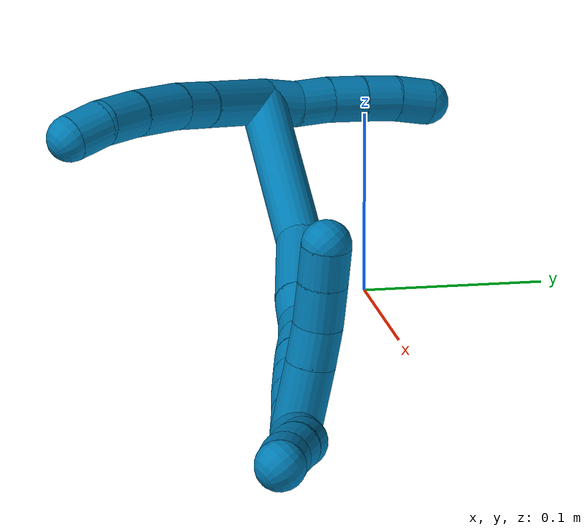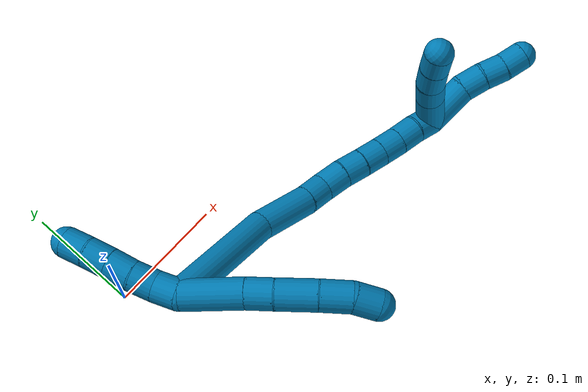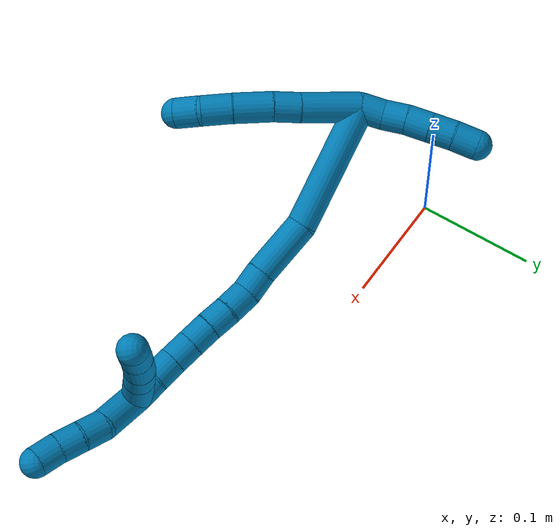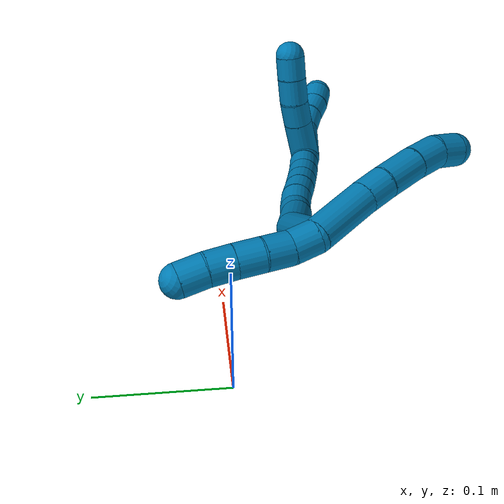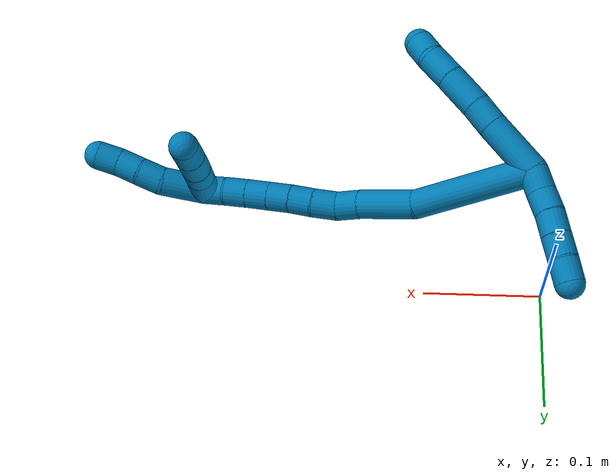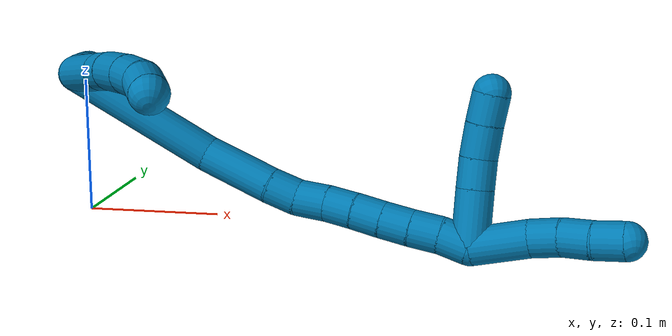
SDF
<sdf version="1.7">
 <world name="default">
  <model name="9">
   <static>0</static>
   <link name="9">
    <collision name="collision-cylinder-e_1_2_8">
     <pose>0.009242 -0.015948 -0.016878 2.3845 0.378766 0.898192</pose>
     <geometry><cylinder><radius>0.0125</radius><length>0.049985</length></cylinder></geometry>
     <surface>
      <friction><ode><mu>1.16</mu><mu2>1.16</mu2><slip1>0</slip1><slip2>0</slip2></ode></friction>
      <contact><ode><kp>1e+06</kp><kd>1</kd><max_vel>0</max_vel><min_depth>0.001</min_depth></ode></contact>
     </surface>
    </collision>
    <visual name="visual-cylinder-e_1_2_8">
     <pose>0.009242 -0.015948 -0.016878 2.3845 0.378766 0.898192</pose>
     <geometry><cylinder><radius>0.0125</radius><length>0.049985</length></cylinder></geometry>
     <material><ambient>0 0.490196 0.709804 1</ambient></material>
    </visual>
    <collision name="collision-cylinder-e_2_8_9">
     <pose>0.021922 -0.038896 -0.041376 2.39864 0.32088 0.787454</pose>
     <geometry><cylinder><radius>0.0125</radius><length>0.021807</length></cylinder></geometry>
     <surface>
      <friction><ode><mu>1.16</mu><mu2>1.16</mu2><slip1>0</slip1><slip2>0</slip2></ode></friction>
      <contact><ode><kp>1e+06</kp><kd>1</kd><max_vel>0</max_vel><min_depth>0.001</min_depth></ode></contact>
     </surface>
    </collision>
    <visual name="visual-cylinder-e_2_8_9">
     <pose>0.021922 -0.038896 -0.041376 2.39864 0.32088 0.787454</pose>
     <geometry><cylinder><radius>0.0125</radius><length>0.021807</length></cylinder></geometry>
     <material><ambient>0 0.490196 0.709804 1</ambient></material>
    </visual>
    <collision name="collision-cylinder-e_3_9_10">
     <pose>0.031049 -0.055239 -0.06107 2.48298 0.356637 0.970626</pose>
     <geometry><cylinder><radius>0.0125</radius><length>0.032584</length></cylinder></geometry>
     <surface>
      <friction><ode><mu>1.16</mu><mu2>1.16</mu2><slip1>0</slip1><slip2>0</slip2></ode></friction>
      <contact><ode><kp>1e+06</kp><kd>1</kd><max_vel>0</max_vel><min_depth>0.001</min_depth></ode></contact>
     </surface>
    </collision>
    <visual name="visual-cylinder-e_3_9_10">
     <pose>0.031049 -0.055239 -0.06107 2.48298 0.356637 0.970626</pose>
     <geometry><cylinder><radius>0.0125</radius><length>0.032584</length></cylinder></geometry>
     <material><ambient>0 0.490196 0.709804 1</ambient></material>
    </visual>
    <collision name="collision-cylinder-e_4_10_11">
     <pose>0.04105 -0.071093 -0.083106 2.56277 0.347728 1.06583</pose>
     <geometry><cylinder><radius>0.0125</radius><length>0.025315</length></cylinder></geometry>
     <surface>
      <friction><ode><mu>1.16</mu><mu2>1.16</mu2><slip1>0</slip1><slip2>0</slip2></ode></friction>
      <contact><ode><kp>1e+06</kp><kd>1</kd><max_vel>0</max_vel><min_depth>0.001</min_depth></ode></contact>
     </surface>
    </collision>
    <visual name="visual-cylinder-e_4_10_11">
     <pose>0.04105 -0.071093 -0.083106 2.56277 0.347728 1.06583</pose>
     <geometry><cylinder><radius>0.0125</radius><length>0.025315</length></cylinder></geometry>
     <material><ambient>0 0.490196 0.709804 1</ambient></material>
    </visual>
    <collision name="collision-cylinder-e_5_11_6">
     <pose>0.047109 -0.081024 -0.102467 2.79254 0.172723 0.912872</pose>
     <geometry><cylinder><radius>0.0125</radius><length>0.020309</length></cylinder></geometry>
     <surface>
      <friction><ode><mu>1.16</mu><mu2>1.16</mu2><slip1>0</slip1><slip2>0</slip2></ode></friction>
      <contact><ode><kp>1e+06</kp><kd>1</kd><max_vel>0</max_vel><min_depth>0.001</min_depth></ode></contact>
     </surface>
    </collision>
    <visual name="visual-cylinder-e_5_11_6">
     <pose>0.047109 -0.081024 -0.102467 2.79254 0.172723 0.912872</pose>
     <geometry><cylinder><radius>0.0125</radius><length>0.020309</length></cylinder></geometry>
     <material><ambient>0 0.490196 0.709804 1</ambient></material>
    </visual>
    <collision name="collision-cylinder-e_1_2_12">
     <pose>-5.6e-05 0.007003 0.007138 -0.775818 -0.005641 0.002305</pose>
     <geometry><cylinder><radius>0.0125</radius><length>0.02</length></cylinder></geometry>
     <surface>
      <friction><ode><mu>1.16</mu><mu2>1.16</mu2><slip1>0</slip1><slip2>0</slip2></ode></friction>
      <contact><ode><kp>1e+06</kp><kd>1</kd><max_vel>0</max_vel><min_depth>0.001</min_depth></ode></contact>
     </surface>
    </collision>
    <visual name="visual-cylinder-e_1_2_12">
     <pose>-5.6e-05 0.007003 0.007138 -0.775818 -0.005641 0.002305</pose>
     <geometry><cylinder><radius>0.0125</radius><length>0.02</length></cylinder></geometry>
     <material><ambient>0 0.490196 0.709804 1</ambient></material>
    </visual>
    <collision name="collision-cylinder-e_2_12_13">
     <pose>0.000122 0.019445 0.022665 -0.57523 0.023488 -0.006949</pose>
     <geometry><cylinder><radius>0.0125</radius><length>0.02</length></cylinder></geometry>
     <surface>
      <friction><ode><mu>1.16</mu><mu2>1.16</mu2><slip1>0</slip1><slip2>0</slip2></ode></friction>
      <contact><ode><kp>1e+06</kp><kd>1</kd><max_vel>0</max_vel><min_depth>0.001</min_depth></ode></contact>
     </surface>
    </collision>
    <visual name="visual-cylinder-e_2_12_13">
     <pose>0.000122 0.019445 0.022665 -0.57523 0.023488 -0.006949</pose>
     <geometry><cylinder><radius>0.0125</radius><length>0.02</length></cylinder></geometry>
     <material><ambient>0 0.490196 0.709804 1</ambient></material>
    </visual>
    <collision name="collision-cylinder-e_3_13_14">
     <pose>0.001516 0.030853 0.038992 -0.644752 0.116135 -0.038831</pose>
     <geometry><cylinder><radius>0.0125</radius><length>0.02</length></cylinder></geometry>
     <surface>
      <friction><ode><mu>1.16</mu><mu2>1.16</mu2><slip1>0</slip1><slip2>0</slip2></ode></friction>
      <contact><ode><kp>1e+06</kp><kd>1</kd><max_vel>0</max_vel><min_depth>0.001</min_depth></ode></contact>
     </surface>
    </collision>
    <visual name="visual-cylinder-e_3_13_14">
     <pose>0.001516 0.030853 0.038992 -0.644752 0.116135 -0.038831</pose>
     <geometry><cylinder><radius>0.0125</radius><length>0.02</length></cylinder></geometry>
     <material><ambient>0 0.490196 0.709804 1</ambient></material>
    </visual>
    <collision name="collision-cylinder-e_4_14_15">
     <pose>0.003625 0.043025 0.054717 -0.672708 0.095165 -0.033295</pose>
     <geometry><cylinder><radius>0.0125</radius><length>0.02</length></cylinder></geometry>
     <surface>
      <friction><ode><mu>1.16</mu><mu2>1.16</mu2><slip1>0</slip1><slip2>0</slip2></ode></friction>
      <contact><ode><kp>1e+06</kp><kd>1</kd><max_vel>0</max_vel><min_depth>0.001</min_depth></ode></contact>
     </surface>
    </collision>
    <visual name="visual-cylinder-e_4_14_15">
     <pose>0.003625 0.043025 0.054717 -0.672708 0.095165 -0.033295</pose>
     <geometry><cylinder><radius>0.0125</radius><length>0.02</length></cylinder></geometry>
     <material><ambient>0 0.490196 0.709804 1</ambient></material>
    </visual>
    <collision name="collision-cylinder-e_5_15_5">
     <pose>0.005466 0.056251 0.069566 -0.782521 0.089201 -0.036818</pose>
     <geometry><cylinder><radius>0.0125</radius><length>0.02</length></cylinder></geometry>
     <surface>
      <friction><ode><mu>1.16</mu><mu2>1.16</mu2><slip1>0</slip1><slip2>0</slip2></ode></friction>
      <contact><ode><kp>1e+06</kp><kd>1</kd><max_vel>0</max_vel><min_depth>0.001</min_depth></ode></contact>
     </surface>
    </collision>
    <visual name="visual-cylinder-e_5_15_5">
     <pose>0.005466 0.056251 0.069566 -0.782521 0.089201 -0.036818</pose>
     <geometry><cylinder><radius>0.0125</radius><length>0.02</length></cylinder></geometry>
     <material><ambient>0 0.490196 0.709804 1</ambient></material>
    </visual>
    <collision name="collision-cylinder-e_1_2_16">
     <pose>0.044813 0.014613 -0.025274 -2.61738 0.993388 -2.22237</pose>
     <geometry><cylinder><radius>0.0125</radius><length>0.106967</length></cylinder></geometry>
     <surface>
      <friction><ode><mu>1.16</mu><mu2>1.16</mu2><slip1>0</slip1><slip2>0</slip2></ode></friction>
      <contact><ode><kp>1e+06</kp><kd>1</kd><max_vel>0</max_vel><min_depth>0.001</min_depth></ode></contact>
     </surface>
    </collision>
    <visual name="visual-cylinder-e_1_2_16">
     <pose>0.044813 0.014613 -0.025274 -2.61738 0.993388 -2.22237</pose>
     <geometry><cylinder><radius>0.0125</radius><length>0.106967</length></cylinder></geometry>
     <material><ambient>0 0.490196 0.709804 1</ambient></material>
    </visual>
    <collision name="collision-cylinder-e_2_16_17">
     <pose>0.110113 0.030081 -0.065069 -3.08275 0.953385 -3.02773</pose>
     <geometry><cylinder><radius>0.0125</radius><length>0.050253</length></cylinder></geometry>
     <surface>
      <friction><ode><mu>1.16</mu><mu2>1.16</mu2><slip1>0</slip1><slip2>0</slip2></ode></friction>
      <contact><ode><kp>1e+06</kp><kd>1</kd><max_vel>0</max_vel><min_depth>0.001</min_depth></ode></contact>
     </surface>
    </collision>
    <visual name="visual-cylinder-e_2_16_17">
     <pose>0.110113 0.030081 -0.065069 -3.08275 0.953385 -3.02773</pose>
     <geometry><cylinder><radius>0.0125</radius><length>0.050253</length></cylinder></geometry>
     <material><ambient>0 0.490196 0.709804 1</ambient></material>
    </visual>
    <collision name="collision-cylinder-e_3_17_18">
     <pose>0.139669 0.031651 -0.084724 -3.00321 1.05153 -2.90385</pose>
     <geometry><cylinder><radius>0.0125</radius><length>0.02089</length></cylinder></geometry>
     <surface>
      <friction><ode><mu>1.16</mu><mu2>1.16</mu2><slip1>0</slip1><slip2>0</slip2></ode></friction>
      <contact><ode><kp>1e+06</kp><kd>1</kd><max_vel>0</max_vel><min_depth>0.001</min_depth></ode></contact>
     </surface>
    </collision>
    <visual name="visual-cylinder-e_3_17_18">
     <pose>0.139669 0.031651 -0.084724 -3.00321 1.05153 -2.90385</pose>
     <geometry><cylinder><radius>0.0125</radius><length>0.02089</length></cylinder></geometry>
     <material><ambient>0 0.490196 0.709804 1</ambient></material>
    </visual>
    <collision name="collision-cylinder-e_4_18_19">
     <pose>0.158248 0.030136 -0.094725 2.71201 1.05808 2.42729</pose>
     <geometry><cylinder><radius>0.0125</radius><length>0.021828</length></cylinder></geometry>
     <surface>
      <friction><ode><mu>1.16</mu><mu2>1.16</mu2><slip1>0</slip1><slip2>0</slip2></ode></friction>
      <contact><ode><kp>1e+06</kp><kd>1</kd><max_vel>0</max_vel><min_depth>0.001</min_depth></ode></contact>
     </surface>
    </collision>
    <visual name="visual-cylinder-e_4_18_19">
     <pose>0.158248 0.030136 -0.094725 2.71201 1.05808 2.42729</pose>
     <geometry><cylinder><radius>0.0125</radius><length>0.021828</length></cylinder></geometry>
     <material><ambient>0 0.490196 0.709804 1</ambient></material>
    </visual>
    <collision name="collision-cylinder-e_5_19_20">
     <pose>0.176019 0.025964 -0.104917 2.79169 0.969399 2.49391</pose>
     <geometry><cylinder><radius>0.0125</radius><length>0.020035</length></cylinder></geometry>
     <surface>
      <friction><ode><mu>1.16</mu><mu2>1.16</mu2><slip1>0</slip1><slip2>0</slip2></ode></friction>
      <contact><ode><kp>1e+06</kp><kd>1</kd><max_vel>0</max_vel><min_depth>0.001</min_depth></ode></contact>
     </surface>
    </collision>
    <visual name="visual-cylinder-e_5_19_20">
     <pose>0.176019 0.025964 -0.104917 2.79169 0.969399 2.49391</pose>
     <geometry><cylinder><radius>0.0125</radius><length>0.020035</length></cylinder></geometry>
     <material><ambient>0 0.490196 0.709804 1</ambient></material>
    </visual>
    <collision name="collision-cylinder-e_6_20_21">
     <pose>0.192683 0.022636 -0.115498 2.88405 0.996704 2.67437</pose>
     <geometry><cylinder><radius>0.0125</radius><length>0.020017</length></cylinder></geometry>
     <surface>
      <friction><ode><mu>1.16</mu><mu2>1.16</mu2><slip1>0</slip1><slip2>0</slip2></ode></friction>
      <contact><ode><kp>1e+06</kp><kd>1</kd><max_vel>0</max_vel><min_depth>0.001</min_depth></ode></contact>
     </surface>
    </collision>
    <visual name="visual-cylinder-e_6_20_21">
     <pose>0.192683 0.022636 -0.115498 2.88405 0.996704 2.67437</pose>
     <geometry><cylinder><radius>0.0125</radius><length>0.020017</length></cylinder></geometry>
     <material><ambient>0 0.490196 0.709804 1</ambient></material>
    </visual>
    <collision name="collision-cylinder-e_7_21_22">
     <pose>0.209577 0.019722 -0.125811 2.84783 1.01416 2.62104</pose>
     <geometry><cylinder><radius>0.0125</radius><length>0.020001</length></cylinder></geometry>
     <surface>
      <friction><ode><mu>1.16</mu><mu2>1.16</mu2><slip1>0</slip1><slip2>0</slip2></ode></friction>
      <contact><ode><kp>1e+06</kp><kd>1</kd><max_vel>0</max_vel><min_depth>0.001</min_depth></ode></contact>
     </surface>
    </collision>
    <visual name="visual-cylinder-e_7_21_22">
     <pose>0.209577 0.019722 -0.125811 2.84783 1.01416 2.62104</pose>
     <geometry><cylinder><radius>0.0125</radius><length>0.020001</length></cylinder></geometry>
     <material><ambient>0 0.490196 0.709804 1</ambient></material>
    </visual>
    <collision name="collision-cylinder-e_8_22_23">
     <pose>0.226793 0.016615 -0.1355 2.81334 1.05971 2.59047</pose>
     <geometry><cylinder><radius>0.0125</radius><length>0.020007</length></cylinder></geometry>
     <surface>
      <friction><ode><mu>1.16</mu><mu2>1.16</mu2><slip1>0</slip1><slip2>0</slip2></ode></friction>
      <contact><ode><kp>1e+06</kp><kd>1</kd><max_vel>0</max_vel><min_depth>0.001</min_depth></ode></contact>
     </surface>
    </collision>
    <visual name="visual-cylinder-e_8_22_23">
     <pose>0.226793 0.016615 -0.1355 2.81334 1.05971 2.59047</pose>
     <geometry><cylinder><radius>0.0125</radius><length>0.020007</length></cylinder></geometry>
     <material><ambient>0 0.490196 0.709804 1</ambient></material>
    </visual>
    <collision name="collision-cylinder-e_9_23_1">
     <pose>0.24381 0.014381 -0.145684 3.02386 0.977473 2.92085</pose>
     <geometry><cylinder><radius>0.0125</radius><length>0.020002</length></cylinder></geometry>
     <surface>
      <friction><ode><mu>1.16</mu><mu2>1.16</mu2><slip1>0</slip1><slip2>0</slip2></ode></friction>
      <contact><ode><kp>1e+06</kp><kd>1</kd><max_vel>0</max_vel><min_depth>0.001</min_depth></ode></contact>
     </surface>
    </collision>
    <visual name="visual-cylinder-e_9_23_1">
     <pose>0.24381 0.014381 -0.145684 3.02386 0.977473 2.92085</pose>
     <geometry><cylinder><radius>0.0125</radius><length>0.020002</length></cylinder></geometry>
     <material><ambient>0 0.490196 0.709804 1</ambient></material>
    </visual>
    <collision name="collision-cylinder-e_1_1_24">
     <pose>0.26949 0.00564 -0.155012 2.00769 1.09675 1.52944</pose>
     <geometry><cylinder><radius>0.0125</radius><length>0.039086</length></cylinder></geometry>
     <surface>
      <friction><ode><mu>1.16</mu><mu2>1.16</mu2><slip1>0</slip1><slip2>0</slip2></ode></friction>
      <contact><ode><kp>1e+06</kp><kd>1</kd><max_vel>0</max_vel><min_depth>0.001</min_depth></ode></contact>
     </surface>
    </collision>
    <visual name="visual-cylinder-e_1_1_24">
     <pose>0.26949 0.00564 -0.155012 2.00769 1.09675 1.52944</pose>
     <geometry><cylinder><radius>0.0125</radius><length>0.039086</length></cylinder></geometry>
     <material><ambient>0 0.490196 0.709804 1</ambient></material>
    </visual>
    <collision name="collision-cylinder-e_2_24_25">
     <pose>0.294816 -0.007741 -0.162961 2.23798 0.866475 1.52283</pose>
     <geometry><cylinder><radius>0.0125</radius><length>0.020832</length></cylinder></geometry>
     <surface>
      <friction><ode><mu>1.16</mu><mu2>1.16</mu2><slip1>0</slip1><slip2>0</slip2></ode></friction>
      <contact><ode><kp>1e+06</kp><kd>1</kd><max_vel>0</max_vel><min_depth>0.001</min_depth></ode></contact>
     </surface>
    </collision>
    <visual name="visual-cylinder-e_2_24_25">
     <pose>0.294816 -0.007741 -0.162961 2.23798 0.866475 1.52283</pose>
     <geometry><cylinder><radius>0.0125</radius><length>0.020832</length></cylinder></geometry>
     <material><ambient>0 0.490196 0.709804 1</ambient></material>
    </visual>
    <collision name="collision-cylinder-e_3_25_26">
     <pose>0.310095 -0.0175 -0.172316 2.43089 0.82099 1.72949</pose>
     <geometry><cylinder><radius>0.0125</radius><length>0.020063</length></cylinder></geometry>
     <surface>
      <friction><ode><mu>1.16</mu><mu2>1.16</mu2><slip1>0</slip1><slip2>0</slip2></ode></friction>
      <contact><ode><kp>1e+06</kp><kd>1</kd><max_vel>0</max_vel><min_depth>0.001</min_depth></ode></contact>
     </surface>
    </collision>
    <visual name="visual-cylinder-e_3_25_26">
     <pose>0.310095 -0.0175 -0.172316 2.43089 0.82099 1.72949</pose>
     <geometry><cylinder><radius>0.0125</radius><length>0.020063</length></cylinder></geometry>
     <material><ambient>0 0.490196 0.709804 1</ambient></material>
    </visual>
    <collision name="collision-cylinder-e_4_26_4">
     <pose>0.325542 -0.026178 -0.18158 2.33987 0.943997 1.75581</pose>
     <geometry><cylinder><radius>0.0125</radius><length>0.020018</length></cylinder></geometry>
     <surface>
      <friction><ode><mu>1.16</mu><mu2>1.16</mu2><slip1>0</slip1><slip2>0</slip2></ode></friction>
      <contact><ode><kp>1e+06</kp><kd>1</kd><max_vel>0</max_vel><min_depth>0.001</min_depth></ode></contact>
     </surface>
    </collision>
    <visual name="visual-cylinder-e_4_26_4">
     <pose>0.325542 -0.026178 -0.18158 2.33987 0.943997 1.75581</pose>
     <geometry><cylinder><radius>0.0125</radius><length>0.020018</length></cylinder></geometry>
     <material><ambient>0 0.490196 0.709804 1</ambient></material>
    </visual>
    <collision name="collision-cylinder-e_1_1_27">
     <pose>0.253787 0.000228 -0.138449 0.812305 0.090415 0.038906</pose>
     <geometry><cylinder><radius>0.0125</radius><length>0.037338</length></cylinder></geometry>
     <surface>
      <friction><ode><mu>1.16</mu><mu2>1.16</mu2><slip1>0</slip1><slip2>0</slip2></ode></friction>
      <contact><ode><kp>1e+06</kp><kd>1</kd><max_vel>0</max_vel><min_depth>0.001</min_depth></ode></contact>
     </surface>
    </collision>
    <visual name="visual-cylinder-e_1_1_27">
     <pose>0.253787 0.000228 -0.138449 0.812305 0.090415 0.038906</pose>
     <geometry><cylinder><radius>0.0125</radius><length>0.037338</length></cylinder></geometry>
     <material><ambient>0 0.490196 0.709804 1</ambient></material>
    </visual>
    <collision name="collision-cylinder-e_2_27_28">
     <pose>0.256465 -0.020837 -0.118914 0.842804 0.097583 0.04377</pose>
     <geometry><cylinder><radius>0.0125</radius><length>0.020375</length></cylinder></geometry>
     <surface>
      <friction><ode><mu>1.16</mu><mu2>1.16</mu2><slip1>0</slip1><slip2>0</slip2></ode></friction>
      <contact><ode><kp>1e+06</kp><kd>1</kd><max_vel>0</max_vel><min_depth>0.001</min_depth></ode></contact>
     </surface>
    </collision>
    <visual name="visual-cylinder-e_2_27_28">
     <pose>0.256465 -0.020837 -0.118914 0.842804 0.097583 0.04377</pose>
     <geometry><cylinder><radius>0.0125</radius><length>0.020375</length></cylinder></geometry>
     <material><ambient>0 0.490196 0.709804 1</ambient></material>
    </visual>
    <collision name="collision-cylinder-e_3_28_29">
     <pose>0.258983 -0.037398 -0.105822 0.956195 0.137717 0.071447</pose>
     <geometry><cylinder><radius>0.0125</radius><length>0.022221</length></cylinder></geometry>
     <surface>
      <friction><ode><mu>1.16</mu><mu2>1.16</mu2><slip1>0</slip1><slip2>0</slip2></ode></friction>
      <contact><ode><kp>1e+06</kp><kd>1</kd><max_vel>0</max_vel><min_depth>0.001</min_depth></ode></contact>
     </surface>
    </collision>
    <visual name="visual-cylinder-e_3_28_29">
     <pose>0.258983 -0.037398 -0.105822 0.956195 0.137717 0.071447</pose>
     <geometry><cylinder><radius>0.0125</radius><length>0.022221</length></cylinder></geometry>
     <material><ambient>0 0.490196 0.709804 1</ambient></material>
    </visual>
    <collision name="collision-cylinder-e_4_29_3">
     <pose>0.262261 -0.054654 -0.094064 0.991054 0.175561 0.095065</pose>
     <geometry><cylinder><radius>0.0125</radius><length>0.020066</length></cylinder></geometry>
     <surface>
      <friction><ode><mu>1.16</mu><mu2>1.16</mu2><slip1>0</slip1><slip2>0</slip2></ode></friction>
      <contact><ode><kp>1e+06</kp><kd>1</kd><max_vel>0</max_vel><min_depth>0.001</min_depth></ode></contact>
     </surface>
    </collision>
    <visual name="visual-cylinder-e_4_29_3">
     <pose>0.262261 -0.054654 -0.094064 0.991054 0.175561 0.095065</pose>
     <geometry><cylinder><radius>0.0125</radius><length>0.020066</length></cylinder></geometry>
     <material><ambient>0 0.490196 0.709804 1</ambient></material>
    </visual>
    <collision name="collision-sphere-3">
     <pose>0.264013 -0.062918 -0.088652 0 -0 0</pose>
     <geometry><sphere><radius>0.0125</radius></sphere></geometry>
     <surface>
      <friction><ode><mu>1.16</mu><mu2>1.16</mu2><slip1>0</slip1><slip2>0</slip2></ode></friction>
      <contact><ode><kp>1e+06</kp><kd>1</kd><max_vel>0</max_vel><min_depth>0.001</min_depth></ode></contact>
     </surface>
    </collision>
    <visual name="visual-sphere-3">
     <pose>0.264013 -0.062918 -0.088652 0 -0 0</pose>
     <geometry><sphere><radius>0.0125</radius></sphere></geometry>
     <material><ambient>0 0.490196 0.709804 1</ambient></material>
    </visual>
    <collision name="collision-sphere-29">
     <pose>0.260509 -0.046389 -0.099475 0 -0 0</pose>
     <geometry><sphere><radius>0.0125</radius></sphere></geometry>
     <surface>
      <friction><ode><mu>1.16</mu><mu2>1.16</mu2><slip1>0</slip1><slip2>0</slip2></ode></friction>
      <contact><ode><kp>1e+06</kp><kd>1</kd><max_vel>0</max_vel><min_depth>0.001</min_depth></ode></contact>
     </surface>
    </collision>
    <visual name="visual-sphere-29">
     <pose>0.260509 -0.046389 -0.099475 0 -0 0</pose>
     <geometry><sphere><radius>0.0125</radius></sphere></geometry>
     <material><ambient>0 0.490196 0.709804 1</ambient></material>
    </visual>
    <collision name="collision-sphere-28">
     <pose>0.257458 -0.028406 -0.112168 0 -0 0</pose>
     <geometry><sphere><radius>0.0125</radius></sphere></geometry>
     <surface>
      <friction><ode><mu>1.16</mu><mu2>1.16</mu2><slip1>0</slip1><slip2>0</slip2></ode></friction>
      <contact><ode><kp>1e+06</kp><kd>1</kd><max_vel>0</max_vel><min_depth>0.001</min_depth></ode></contact>
     </surface>
    </collision>
    <visual name="visual-sphere-28">
     <pose>0.257458 -0.028406 -0.112168 0 -0 0</pose>
     <geometry><sphere><radius>0.0125</radius></sphere></geometry>
     <material><ambient>0 0.490196 0.709804 1</ambient></material>
    </visual>
    <collision name="collision-sphere-27">
     <pose>0.255473 -0.013269 -0.12566 0 -0 0</pose>
     <geometry><sphere><radius>0.0125</radius></sphere></geometry>
     <surface>
      <friction><ode><mu>1.16</mu><mu2>1.16</mu2><slip1>0</slip1><slip2>0</slip2></ode></friction>
      <contact><ode><kp>1e+06</kp><kd>1</kd><max_vel>0</max_vel><min_depth>0.001</min_depth></ode></contact>
     </surface>
    </collision>
    <visual name="visual-sphere-27">
     <pose>0.255473 -0.013269 -0.12566 0 -0 0</pose>
     <geometry><sphere><radius>0.0125</radius></sphere></geometry>
     <material><ambient>0 0.490196 0.709804 1</ambient></material>
    </visual>
    <collision name="collision-sphere-4">
     <pose>0.333649 -0.030397 -0.185663 0 -0 0</pose>
     <geometry><sphere><radius>0.0125</radius></sphere></geometry>
     <surface>
      <friction><ode><mu>1.16</mu><mu2>1.16</mu2><slip1>0</slip1><slip2>0</slip2></ode></friction>
      <contact><ode><kp>1e+06</kp><kd>1</kd><max_vel>0</max_vel><min_depth>0.001</min_depth></ode></contact>
     </surface>
    </collision>
    <visual name="visual-sphere-4">
     <pose>0.333649 -0.030397 -0.185663 0 -0 0</pose>
     <geometry><sphere><radius>0.0125</radius></sphere></geometry>
     <material><ambient>0 0.490196 0.709804 1</ambient></material>
    </visual>
    <collision name="collision-sphere-26">
     <pose>0.317436 -0.02196 -0.177497 0 -0 0</pose>
     <geometry><sphere><radius>0.0125</radius></sphere></geometry>
     <surface>
      <friction><ode><mu>1.16</mu><mu2>1.16</mu2><slip1>0</slip1><slip2>0</slip2></ode></friction>
      <contact><ode><kp>1e+06</kp><kd>1</kd><max_vel>0</max_vel><min_depth>0.001</min_depth></ode></contact>
     </surface>
    </collision>
    <visual name="visual-sphere-26">
     <pose>0.317436 -0.02196 -0.177497 0 -0 0</pose>
     <geometry><sphere><radius>0.0125</radius></sphere></geometry>
     <material><ambient>0 0.490196 0.709804 1</ambient></material>
    </visual>
    <collision name="collision-sphere-25">
     <pose>0.302753 -0.01304 -0.167134 0 -0 0</pose>
     <geometry><sphere><radius>0.0125</radius></sphere></geometry>
     <surface>
      <friction><ode><mu>1.16</mu><mu2>1.16</mu2><slip1>0</slip1><slip2>0</slip2></ode></friction>
      <contact><ode><kp>1e+06</kp><kd>1</kd><max_vel>0</max_vel><min_depth>0.001</min_depth></ode></contact>
     </surface>
    </collision>
    <visual name="visual-sphere-25">
     <pose>0.302753 -0.01304 -0.167134 0 -0 0</pose>
     <geometry><sphere><radius>0.0125</radius></sphere></geometry>
     <material><ambient>0 0.490196 0.709804 1</ambient></material>
    </visual>
    <collision name="collision-sphere-24">
     <pose>0.286878 -0.002443 -0.158787 0 -0 0</pose>
     <geometry><sphere><radius>0.0125</radius></sphere></geometry>
     <surface>
      <friction><ode><mu>1.16</mu><mu2>1.16</mu2><slip1>0</slip1><slip2>0</slip2></ode></friction>
      <contact><ode><kp>1e+06</kp><kd>1</kd><max_vel>0</max_vel><min_depth>0.001</min_depth></ode></contact>
     </surface>
    </collision>
    <visual name="visual-sphere-24">
     <pose>0.286878 -0.002443 -0.158787 0 -0 0</pose>
     <geometry><sphere><radius>0.0125</radius></sphere></geometry>
     <material><ambient>0 0.490196 0.709804 1</ambient></material>
    </visual>
    <collision name="collision-sphere-1">
     <pose>0.252102 0.013724 -0.151237 0 -0 0</pose>
     <geometry><sphere><radius>0.0125</radius></sphere></geometry>
     <surface>
      <friction><ode><mu>1.16</mu><mu2>1.16</mu2><slip1>0</slip1><slip2>0</slip2></ode></friction>
      <contact><ode><kp>1e+06</kp><kd>1</kd><max_vel>0</max_vel><min_depth>0.001</min_depth></ode></contact>
     </surface>
    </collision>
    <visual name="visual-sphere-1">
     <pose>0.252102 0.013724 -0.151237 0 -0 0</pose>
     <geometry><sphere><radius>0.0125</radius></sphere></geometry>
     <material><ambient>0 0.490196 0.709804 1</ambient></material>
    </visual>
    <collision name="collision-sphere-23">
     <pose>0.235518 0.015037 -0.140131 0 -0 0</pose>
     <geometry><sphere><radius>0.0125</radius></sphere></geometry>
     <surface>
      <friction><ode><mu>1.16</mu><mu2>1.16</mu2><slip1>0</slip1><slip2>0</slip2></ode></friction>
      <contact><ode><kp>1e+06</kp><kd>1</kd><max_vel>0</max_vel><min_depth>0.001</min_depth></ode></contact>
     </surface>
    </collision>
    <visual name="visual-sphere-23">
     <pose>0.235518 0.015037 -0.140131 0 -0 0</pose>
     <geometry><sphere><radius>0.0125</radius></sphere></geometry>
     <material><ambient>0 0.490196 0.709804 1</ambient></material>
    </visual>
    <collision name="collision-sphere-22">
     <pose>0.218068 0.018192 -0.130868 0 -0 0</pose>
     <geometry><sphere><radius>0.0125</radius></sphere></geometry>
     <surface>
      <friction><ode><mu>1.16</mu><mu2>1.16</mu2><slip1>0</slip1><slip2>0</slip2></ode></friction>
      <contact><ode><kp>1e+06</kp><kd>1</kd><max_vel>0</max_vel><min_depth>0.001</min_depth></ode></contact>
     </surface>
    </collision>
    <visual name="visual-sphere-22">
     <pose>0.218068 0.018192 -0.130868 0 -0 0</pose>
     <geometry><sphere><radius>0.0125</radius></sphere></geometry>
     <material><ambient>0 0.490196 0.709804 1</ambient></material>
    </visual>
    <collision name="collision-sphere-21">
     <pose>0.201087 0.021252 -0.120754 0 -0 0</pose>
     <geometry><sphere><radius>0.0125</radius></sphere></geometry>
     <surface>
      <friction><ode><mu>1.16</mu><mu2>1.16</mu2><slip1>0</slip1><slip2>0</slip2></ode></friction>
      <contact><ode><kp>1e+06</kp><kd>1</kd><max_vel>0</max_vel><min_depth>0.001</min_depth></ode></contact>
     </surface>
    </collision>
    <visual name="visual-sphere-21">
     <pose>0.201087 0.021252 -0.120754 0 -0 0</pose>
     <geometry><sphere><radius>0.0125</radius></sphere></geometry>
     <material><ambient>0 0.490196 0.709804 1</ambient></material>
    </visual>
    <collision name="collision-sphere-6">
     <pose>0.048854 -0.084445 -0.111867 0 -0 0</pose>
     <geometry><sphere><radius>0.0125</radius></sphere></geometry>
     <surface>
      <friction><ode><mu>1.16</mu><mu2>1.16</mu2><slip1>0</slip1><slip2>0</slip2></ode></friction>
      <contact><ode><kp>1e+06</kp><kd>1</kd><max_vel>0</max_vel><min_depth>0.001</min_depth></ode></contact>
     </surface>
    </collision>
    <visual name="visual-sphere-6">
     <pose>0.048854 -0.084445 -0.111867 0 -0 0</pose>
     <geometry><sphere><radius>0.0125</radius></sphere></geometry>
     <material><ambient>0 0.490196 0.709804 1</ambient></material>
    </visual>
    <collision name="collision-sphere-11">
     <pose>0.045363 -0.077602 -0.093067 0 -0 0</pose>
     <geometry><sphere><radius>0.0125</radius></sphere></geometry>
     <surface>
      <friction><ode><mu>1.16</mu><mu2>1.16</mu2><slip1>0</slip1><slip2>0</slip2></ode></friction>
      <contact><ode><kp>1e+06</kp><kd>1</kd><max_vel>0</max_vel><min_depth>0.001</min_depth></ode></contact>
     </surface>
    </collision>
    <visual name="visual-sphere-11">
     <pose>0.045363 -0.077602 -0.093067 0 -0 0</pose>
     <geometry><sphere><radius>0.0125</radius></sphere></geometry>
     <material><ambient>0 0.490196 0.709804 1</ambient></material>
    </visual>
    <collision name="collision-sphere-10">
     <pose>0.036737 -0.064583 -0.073144 0 -0 0</pose>
     <geometry><sphere><radius>0.0125</radius></sphere></geometry>
     <surface>
      <friction><ode><mu>1.16</mu><mu2>1.16</mu2><slip1>0</slip1><slip2>0</slip2></ode></friction>
      <contact><ode><kp>1e+06</kp><kd>1</kd><max_vel>0</max_vel><min_depth>0.001</min_depth></ode></contact>
     </surface>
    </collision>
    <visual name="visual-sphere-10">
     <pose>0.036737 -0.064583 -0.073144 0 -0 0</pose>
     <geometry><sphere><radius>0.0125</radius></sphere></geometry>
     <material><ambient>0 0.490196 0.709804 1</ambient></material>
    </visual>
    <collision name="collision-sphere-9">
     <pose>0.025361 -0.045896 -0.048997 0 -0 0</pose>
     <geometry><sphere><radius>0.0125</radius></sphere></geometry>
     <surface>
      <friction><ode><mu>1.16</mu><mu2>1.16</mu2><slip1>0</slip1><slip2>0</slip2></ode></friction>
      <contact><ode><kp>1e+06</kp><kd>1</kd><max_vel>0</max_vel><min_depth>0.001</min_depth></ode></contact>
     </surface>
    </collision>
    <visual name="visual-sphere-9">
     <pose>0.025361 -0.045896 -0.048997 0 -0 0</pose>
     <geometry><sphere><radius>0.0125</radius></sphere></geometry>
     <material><ambient>0 0.490196 0.709804 1</ambient></material>
    </visual>
    <collision name="collision-sphere-2">
     <geometry><sphere><radius>0.0125</radius></sphere></geometry>
     <surface>
      <friction><ode><mu>1.16</mu><mu2>1.16</mu2><slip1>0</slip1><slip2>0</slip2></ode></friction>
      <contact><ode><kp>1e+06</kp><kd>1</kd><max_vel>0</max_vel><min_depth>0.001</min_depth></ode></contact>
     </surface>
    </collision>
    <visual name="visual-sphere-2">
     <geometry><sphere><radius>0.0125</radius></sphere></geometry>
     <material><ambient>0 0.490196 0.709804 1</ambient></material>
    </visual>
    <collision name="collision-sphere-19">
     <pose>0.167759 0.027907 -0.099593 0 -0 0</pose>
     <geometry><sphere><radius>0.0125</radius></sphere></geometry>
     <surface>
      <friction><ode><mu>1.16</mu><mu2>1.16</mu2><slip1>0</slip1><slip2>0</slip2></ode></friction>
      <contact><ode><kp>1e+06</kp><kd>1</kd><max_vel>0</max_vel><min_depth>0.001</min_depth></ode></contact>
     </surface>
    </collision>
    <visual name="visual-sphere-19">
     <pose>0.167759 0.027907 -0.099593 0 -0 0</pose>
     <geometry><sphere><radius>0.0125</radius></sphere></geometry>
     <material><ambient>0 0.490196 0.709804 1</ambient></material>
    </visual>
    <collision name="collision-sphere-8">
     <pose>0.018483 -0.031897 -0.033756 0 -0 0</pose>
     <geometry><sphere><radius>0.0125</radius></sphere></geometry>
     <surface>
      <friction><ode><mu>1.16</mu><mu2>1.16</mu2><slip1>0</slip1><slip2>0</slip2></ode></friction>
      <contact><ode><kp>1e+06</kp><kd>1</kd><max_vel>0</max_vel><min_depth>0.001</min_depth></ode></contact>
     </surface>
    </collision>
    <visual name="visual-sphere-8">
     <pose>0.018483 -0.031897 -0.033756 0 -0 0</pose>
     <geometry><sphere><radius>0.0125</radius></sphere></geometry>
     <material><ambient>0 0.490196 0.709804 1</ambient></material>
    </visual>
    <collision name="collision-sphere-12">
     <pose>-0.000113 0.014006 0.014277 0 -0 0</pose>
     <geometry><sphere><radius>0.0125</radius></sphere></geometry>
     <surface>
      <friction><ode><mu>1.16</mu><mu2>1.16</mu2><slip1>0</slip1><slip2>0</slip2></ode></friction>
      <contact><ode><kp>1e+06</kp><kd>1</kd><max_vel>0</max_vel><min_depth>0.001</min_depth></ode></contact>
     </surface>
    </collision>
    <visual name="visual-sphere-12">
     <pose>-0.000113 0.014006 0.014277 0 -0 0</pose>
     <geometry><sphere><radius>0.0125</radius></sphere></geometry>
     <material><ambient>0 0.490196 0.709804 1</ambient></material>
    </visual>
    <collision name="collision-sphere-13">
     <pose>0.000357 0.024883 0.031053 0 -0 0</pose>
     <geometry><sphere><radius>0.0125</radius></sphere></geometry>
     <surface>
      <friction><ode><mu>1.16</mu><mu2>1.16</mu2><slip1>0</slip1><slip2>0</slip2></ode></friction>
      <contact><ode><kp>1e+06</kp><kd>1</kd><max_vel>0</max_vel><min_depth>0.001</min_depth></ode></contact>
     </surface>
    </collision>
    <visual name="visual-sphere-13">
     <pose>0.000357 0.024883 0.031053 0 -0 0</pose>
     <geometry><sphere><radius>0.0125</radius></sphere></geometry>
     <material><ambient>0 0.490196 0.709804 1</ambient></material>
    </visual>
    <collision name="collision-sphere-14">
     <pose>0.002674 0.036822 0.046931 0 -0 0</pose>
     <geometry><sphere><radius>0.0125</radius></sphere></geometry>
     <surface>
      <friction><ode><mu>1.16</mu><mu2>1.16</mu2><slip1>0</slip1><slip2>0</slip2></ode></friction>
      <contact><ode><kp>1e+06</kp><kd>1</kd><max_vel>0</max_vel><min_depth>0.001</min_depth></ode></contact>
     </surface>
    </collision>
    <visual name="visual-sphere-14">
     <pose>0.002674 0.036822 0.046931 0 -0 0</pose>
     <geometry><sphere><radius>0.0125</radius></sphere></geometry>
     <material><ambient>0 0.490196 0.709804 1</ambient></material>
    </visual>
    <collision name="collision-sphere-15">
     <pose>0.004575 0.049228 0.062503 0 -0 0</pose>
     <geometry><sphere><radius>0.0125</radius></sphere></geometry>
     <surface>
      <friction><ode><mu>1.16</mu><mu2>1.16</mu2><slip1>0</slip1><slip2>0</slip2></ode></friction>
      <contact><ode><kp>1e+06</kp><kd>1</kd><max_vel>0</max_vel><min_depth>0.001</min_depth></ode></contact>
     </surface>
    </collision>
    <visual name="visual-sphere-15">
     <pose>0.004575 0.049228 0.062503 0 -0 0</pose>
     <geometry><sphere><radius>0.0125</radius></sphere></geometry>
     <material><ambient>0 0.490196 0.709804 1</ambient></material>
    </visual>
    <collision name="collision-sphere-5">
     <pose>0.006356 0.063273 0.076629 0 -0 0</pose>
     <geometry><sphere><radius>0.0125</radius></sphere></geometry>
     <surface>
      <friction><ode><mu>1.16</mu><mu2>1.16</mu2><slip1>0</slip1><slip2>0</slip2></ode></friction>
      <contact><ode><kp>1e+06</kp><kd>1</kd><max_vel>0</max_vel><min_depth>0.001</min_depth></ode></contact>
     </surface>
    </collision>
    <visual name="visual-sphere-5">
     <pose>0.006356 0.063273 0.076629 0 -0 0</pose>
     <geometry><sphere><radius>0.0125</radius></sphere></geometry>
     <material><ambient>0 0.490196 0.709804 1</ambient></material>
    </visual>
    <collision name="collision-sphere-16">
     <pose>0.089626 0.029225 -0.050548 0 -0 0</pose>
     <geometry><sphere><radius>0.0125</radius></sphere></geometry>
     <surface>
      <friction><ode><mu>1.16</mu><mu2>1.16</mu2><slip1>0</slip1><slip2>0</slip2></ode></friction>
      <contact><ode><kp>1e+06</kp><kd>1</kd><max_vel>0</max_vel><min_depth>0.001</min_depth></ode></contact>
     </surface>
    </collision>
    <visual name="visual-sphere-16">
     <pose>0.089626 0.029225 -0.050548 0 -0 0</pose>
     <geometry><sphere><radius>0.0125</radius></sphere></geometry>
     <material><ambient>0 0.490196 0.709804 1</ambient></material>
    </visual>
    <collision name="collision-sphere-17">
     <pose>0.130601 0.030936 -0.079591 0 -0 0</pose>
     <geometry><sphere><radius>0.0125</radius></sphere></geometry>
     <surface>
      <friction><ode><mu>1.16</mu><mu2>1.16</mu2><slip1>0</slip1><slip2>0</slip2></ode></friction>
      <contact><ode><kp>1e+06</kp><kd>1</kd><max_vel>0</max_vel><min_depth>0.001</min_depth></ode></contact>
     </surface>
    </collision>
    <visual name="visual-sphere-17">
     <pose>0.130601 0.030936 -0.079591 0 -0 0</pose>
     <geometry><sphere><radius>0.0125</radius></sphere></geometry>
     <material><ambient>0 0.490196 0.709804 1</ambient></material>
    </visual>
    <collision name="collision-sphere-18">
     <pose>0.148738 0.032366 -0.089858 0 -0 0</pose>
     <geometry><sphere><radius>0.0125</radius></sphere></geometry>
     <surface>
      <friction><ode><mu>1.16</mu><mu2>1.16</mu2><slip1>0</slip1><slip2>0</slip2></ode></friction>
      <contact><ode><kp>1e+06</kp><kd>1</kd><max_vel>0</max_vel><min_depth>0.001</min_depth></ode></contact>
     </surface>
    </collision>
    <visual name="visual-sphere-18">
     <pose>0.148738 0.032366 -0.089858 0 -0 0</pose>
     <geometry><sphere><radius>0.0125</radius></sphere></geometry>
     <material><ambient>0 0.490196 0.709804 1</ambient></material>
    </visual>
    <collision name="collision-sphere-20">
     <pose>0.184278 0.024021 -0.110241 0 -0 0</pose>
     <geometry><sphere><radius>0.0125</radius></sphere></geometry>
     <surface>
      <friction><ode><mu>1.16</mu><mu2>1.16</mu2><slip1>0</slip1><slip2>0</slip2></ode></friction>
      <contact><ode><kp>1e+06</kp><kd>1</kd><max_vel>0</max_vel><min_depth>0.001</min_depth></ode></contact>
     </surface>
    </collision>
    <visual name="visual-sphere-20">
     <pose>0.184278 0.024021 -0.110241 0 -0 0</pose>
     <geometry><sphere><radius>0.0125</radius></sphere></geometry>
     <material><ambient>0 0.490196 0.709804 1</ambient></material>
    </visual>
    <inertial>
     <pose>0.129308 -0.000716 -0.07307 0 -0 0</pose>
     <mass>0.75</mass>
     <inertia><ixx>-8e-06</ixx><ixy>0</ixy><ixz>0</ixz><iyy>9.6e-05</iyy><iyz>0</iyz><izz>-0.000146</izz></inertia>
    </inertial>
   </link>
   <pose>0.018284 -0.059725 0.113643 -0.982948 0.024798 0.335807</pose>
  </model>
 </world>
</sdf>
